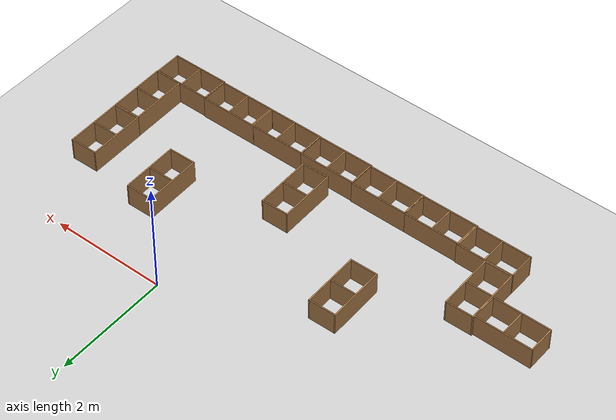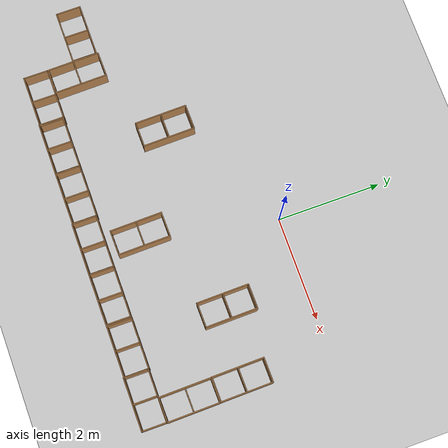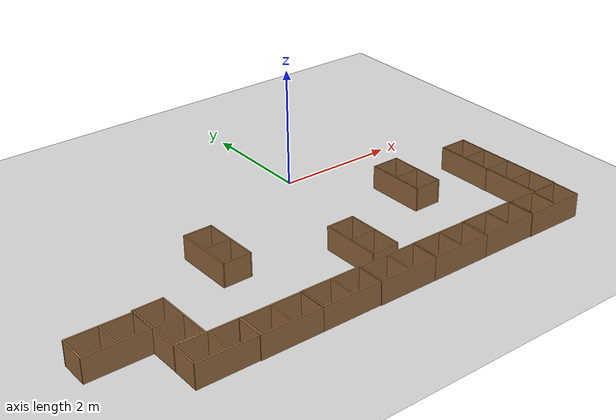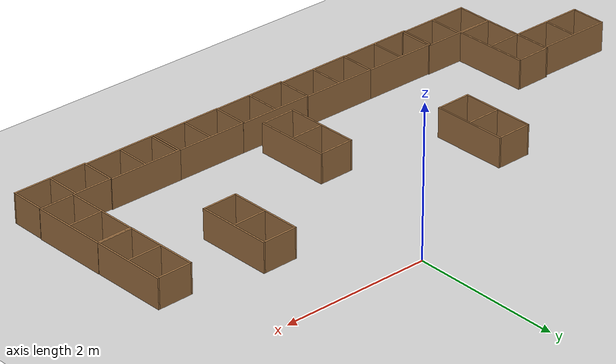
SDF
<sdf version="1.7">
 <world name="default">
  <model name="ground_plane">
   <static>1</static>
   <link name="link">
    <collision name="collision">
     <geometry><plane><normal>0 0 1</normal><size>100 100</size></plane></geometry>
     <surface>
      <contact><collide_bitmask>65535</collide_bitmask></contact>
      <friction><ode><mu>100</mu><mu2>50</mu2></ode></friction>
     </surface>
    </collision>
    <visual name="visual">
     <cast_shadows>0</cast_shadows>
     <geometry><plane><normal>0 0 1</normal><size>100 100</size></plane></geometry>
     <material>
      <script><uri>file://media/materials/scripts/gazebo.material</uri><name>Gazebo/Grey</name></script>
     </material>
    </visual>
   </link>
  </model>
  <model name="cabinet">
   <static>1</static>
   <link name="cabinet_bottom_plate">
    <inertial>
     <pose>0 0 -1 0 -0 0</pose>
     <inertia><ixx>2.05</ixx><ixy>0</ixy><ixz>0</ixz><iyy>2.05</iyy><iyz>0</iyz><izz>2.05</izz></inertia>
     <mass>25</mass>
    </inertial>
    <collision name="cabinet_bottom_plate_geom">
     <pose>0 0 0.01 0 -0 0</pose>
     <geometry><box><size>0.45 0.45 0.02</size></box></geometry>
    </collision>
    <visual name="cabinet_bottom_plate_geom_visual">
     <pose>0 0 0.01 0 -0 0</pose>
     <geometry><box><size>0.45 0.45 0.02</size></box></geometry>
     <material>
      <script><uri>file://media/materials/scripts/gazebo.material</uri><name>Gazebo/Wood</name></script>
     </material>
    </visual>
    <collision name="cabinet_bottom_plate_geom_cabinet_back_plate">
     <pose>0.235 0 0.51 0 -0 0</pose>
     <geometry><box><size>0.02 0.45 1.02</size></box></geometry>
    </collision>
    <visual name="cabinet_bottom_plate_geom_cabinet_back_plate_visual">
     <pose>0.235 0 0.51 0 -0 0</pose>
     <geometry><box><size>0.02 0.45 1.02</size></box></geometry>
     <material>
      <script><uri>file://media/materials/scripts/gazebo.material</uri><name>Gazebo/Wood</name></script>
     </material>
    </visual>
    <collision name="cabinet_bottom_plate_geom_cabinet_left_plate">
     <pose>0 0.235 0.51 0 -0 0</pose>
     <geometry><box><size>0.45 0.02 1.02</size></box></geometry>
    </collision>
    <visual name="cabinet_bottom_plate_geom_cabinet_left_plate_visual">
     <pose>0 0.235 0.51 0 -0 0</pose>
     <geometry><box><size>0.45 0.02 1.02</size></box></geometry>
     <material>
      <script><uri>file://media/materials/scripts/gazebo.material</uri><name>Gazebo/Wood</name></script>
     </material>
    </visual>
    <collision name="cabinet_bottom_plate_geom_cabinet_middle_plate">
     <pose>0 0 0.51 0 -0 0</pose>
     <geometry><box><size>0.45 0.45 0.02</size></box></geometry>
    </collision>
    <visual name="cabinet_bottom_plate_geom_cabinet_middle_plate_visual">
     <pose>0 0 0.51 0 -0 0</pose>
     <geometry><box><size>0.45 0.45 0.02</size></box></geometry>
     <material>
      <script><uri>file://media/materials/scripts/gazebo.material</uri><name>Gazebo/Wood</name></script>
     </material>
    </visual>
    <collision name="cabinet_bottom_plate_geom_cabinet_right_plate">
     <pose>0 -0.235 0.51 0 -0 0</pose>
     <geometry><box><size>0.45 0.02 1.02</size></box></geometry>
    </collision>
    <visual name="cabinet_bottom_plate_geom_cabinet_right_plate_visual">
     <pose>0 -0.235 0.51 0 -0 0</pose>
     <geometry><box><size>0.45 0.02 1.02</size></box></geometry>
     <material>
      <script><uri>file://media/materials/scripts/gazebo.material</uri><name>Gazebo/Wood</name></script>
     </material>
    </visual>
    <collision name="cabinet_bottom_plate_geom_cabinet_top_plate">
     <pose>0 0 1.01 0 -0 0</pose>
     <geometry><box><size>0.45 0.45 0.02</size></box></geometry>
    </collision>
    <visual name="cabinet_bottom_plate_geom_cabinet_top_plate_visual">
     <pose>0 0 1.01 0 -0 0</pose>
     <geometry><box><size>0.45 0.45 0.02</size></box></geometry>
     <material>
      <script><uri>file://media/materials/scripts/gazebo.material</uri><name>Gazebo/Wood</name></script>
     </material>
    </visual>
   </link>
   <pose>-0.147311 -3.44738 0.169718 3.14159 1.5658 3.14159</pose>
  </model>
  <model name="cabinet_clone">
   <static>1</static>
   <link name="cabinet_bottom_plate">
    <inertial>
     <pose>0 0 -1 0 -0 0</pose>
     <inertia><ixx>2.05</ixx><ixy>0</ixy><ixz>0</ixz><iyy>2.05</iyy><iyz>0</iyz><izz>2.05</izz></inertia>
     <mass>25</mass>
    </inertial>
    <collision name="cabinet_bottom_plate_geom">
     <pose>0 0 0.01 0 -0 0</pose>
     <geometry><box><size>0.45 0.45 0.02</size></box></geometry>
    </collision>
    <visual name="cabinet_bottom_plate_geom_visual">
     <pose>0 0 0.01 0 -0 0</pose>
     <geometry><box><size>0.45 0.45 0.02</size></box></geometry>
     <material>
      <script><uri>file://media/materials/scripts/gazebo.material</uri><name>Gazebo/Wood</name></script>
     </material>
    </visual>
    <collision name="cabinet_bottom_plate_geom_cabinet_back_plate">
     <pose>0.235 0 0.51 0 -0 0</pose>
     <geometry><box><size>0.02 0.45 1.02</size></box></geometry>
    </collision>
    <visual name="cabinet_bottom_plate_geom_cabinet_back_plate_visual">
     <pose>0.235 0 0.51 0 -0 0</pose>
     <geometry><box><size>0.02 0.45 1.02</size></box></geometry>
     <material>
      <script><uri>file://media/materials/scripts/gazebo.material</uri><name>Gazebo/Wood</name></script>
     </material>
    </visual>
    <collision name="cabinet_bottom_plate_geom_cabinet_left_plate">
     <pose>0 0.235 0.51 0 -0 0</pose>
     <geometry><box><size>0.45 0.02 1.02</size></box></geometry>
    </collision>
    <visual name="cabinet_bottom_plate_geom_cabinet_left_plate_visual">
     <pose>0 0.235 0.51 0 -0 0</pose>
     <geometry><box><size>0.45 0.02 1.02</size></box></geometry>
     <material>
      <script><uri>file://media/materials/scripts/gazebo.material</uri><name>Gazebo/Wood</name></script>
     </material>
    </visual>
    <collision name="cabinet_bottom_plate_geom_cabinet_middle_plate">
     <pose>0 0 0.51 0 -0 0</pose>
     <geometry><box><size>0.45 0.45 0.02</size></box></geometry>
    </collision>
    <visual name="cabinet_bottom_plate_geom_cabinet_middle_plate_visual">
     <pose>0 0 0.51 0 -0 0</pose>
     <geometry><box><size>0.45 0.45 0.02</size></box></geometry>
     <material>
      <script><uri>file://media/materials/scripts/gazebo.material</uri><name>Gazebo/Wood</name></script>
     </material>
    </visual>
    <collision name="cabinet_bottom_plate_geom_cabinet_right_plate">
     <pose>0 -0.235 0.51 0 -0 0</pose>
     <geometry><box><size>0.45 0.02 1.02</size></box></geometry>
    </collision>
    <visual name="cabinet_bottom_plate_geom_cabinet_right_plate_visual">
     <pose>0 -0.235 0.51 0 -0 0</pose>
     <geometry><box><size>0.45 0.02 1.02</size></box></geometry>
     <material>
      <script><uri>file://media/materials/scripts/gazebo.material</uri><name>Gazebo/Wood</name></script>
     </material>
    </visual>
    <collision name="cabinet_bottom_plate_geom_cabinet_top_plate">
     <pose>0 0 1.01 0 -0 0</pose>
     <geometry><box><size>0.45 0.45 0.02</size></box></geometry>
    </collision>
    <visual name="cabinet_bottom_plate_geom_cabinet_top_plate_visual">
     <pose>0 0 1.01 0 -0 0</pose>
     <geometry><box><size>0.45 0.45 0.02</size></box></geometry>
     <material>
      <script><uri>file://media/materials/scripts/gazebo.material</uri><name>Gazebo/Wood</name></script>
     </material>
    </visual>
   </link>
   <pose>-1.15505 -3.44663 0.169718 3.14159 1.5658 3.14159</pose>
  </model>
  <model name="cabinet_clone_0">
   <static>1</static>
   <link name="cabinet_bottom_plate">
    <inertial>
     <pose>0 0 -1 0 -0 0</pose>
     <inertia><ixx>2.05</ixx><ixy>0</ixy><ixz>0</ixz><iyy>2.05</iyy><iyz>0</iyz><izz>2.05</izz></inertia>
     <mass>25</mass>
    </inertial>
    <collision name="cabinet_bottom_plate_geom">
     <pose>0 0 0.01 0 -0 0</pose>
     <geometry><box><size>0.45 0.45 0.02</size></box></geometry>
    </collision>
    <visual name="cabinet_bottom_plate_geom_visual">
     <pose>0 0 0.01 0 -0 0</pose>
     <geometry><box><size>0.45 0.45 0.02</size></box></geometry>
     <material>
      <script><uri>file://media/materials/scripts/gazebo.material</uri><name>Gazebo/Wood</name></script>
     </material>
    </visual>
    <collision name="cabinet_bottom_plate_geom_cabinet_back_plate">
     <pose>0.235 0 0.51 0 -0 0</pose>
     <geometry><box><size>0.02 0.45 1.02</size></box></geometry>
    </collision>
    <visual name="cabinet_bottom_plate_geom_cabinet_back_plate_visual">
     <pose>0.235 0 0.51 0 -0 0</pose>
     <geometry><box><size>0.02 0.45 1.02</size></box></geometry>
     <material>
      <script><uri>file://media/materials/scripts/gazebo.material</uri><name>Gazebo/Wood</name></script>
     </material>
    </visual>
    <collision name="cabinet_bottom_plate_geom_cabinet_left_plate">
     <pose>0 0.235 0.51 0 -0 0</pose>
     <geometry><box><size>0.45 0.02 1.02</size></box></geometry>
    </collision>
    <visual name="cabinet_bottom_plate_geom_cabinet_left_plate_visual">
     <pose>0 0.235 0.51 0 -0 0</pose>
     <geometry><box><size>0.45 0.02 1.02</size></box></geometry>
     <material>
      <script><uri>file://media/materials/scripts/gazebo.material</uri><name>Gazebo/Wood</name></script>
     </material>
    </visual>
    <collision name="cabinet_bottom_plate_geom_cabinet_middle_plate">
     <pose>0 0 0.51 0 -0 0</pose>
     <geometry><box><size>0.45 0.45 0.02</size></box></geometry>
    </collision>
    <visual name="cabinet_bottom_plate_geom_cabinet_middle_plate_visual">
     <pose>0 0 0.51 0 -0 0</pose>
     <geometry><box><size>0.45 0.45 0.02</size></box></geometry>
     <material>
      <script><uri>file://media/materials/scripts/gazebo.material</uri><name>Gazebo/Wood</name></script>
     </material>
    </visual>
    <collision name="cabinet_bottom_plate_geom_cabinet_right_plate">
     <pose>0 -0.235 0.51 0 -0 0</pose>
     <geometry><box><size>0.45 0.02 1.02</size></box></geometry>
    </collision>
    <visual name="cabinet_bottom_plate_geom_cabinet_right_plate_visual">
     <pose>0 -0.235 0.51 0 -0 0</pose>
     <geometry><box><size>0.45 0.02 1.02</size></box></geometry>
     <material>
      <script><uri>file://media/materials/scripts/gazebo.material</uri><name>Gazebo/Wood</name></script>
     </material>
    </visual>
    <collision name="cabinet_bottom_plate_geom_cabinet_top_plate">
     <pose>0 0 1.01 0 -0 0</pose>
     <geometry><box><size>0.45 0.45 0.02</size></box></geometry>
    </collision>
    <visual name="cabinet_bottom_plate_geom_cabinet_top_plate_visual">
     <pose>0 0 1.01 0 -0 0</pose>
     <geometry><box><size>0.45 0.45 0.02</size></box></geometry>
     <material>
      <script><uri>file://media/materials/scripts/gazebo.material</uri><name>Gazebo/Wood</name></script>
     </material>
    </visual>
   </link>
   <pose>-2.16153 -3.43466 0.169718 3.14159 1.5658 3.14159</pose>
  </model>
  <model name="cabinet_clone_1">
   <static>1</static>
   <link name="cabinet_bottom_plate">
    <inertial>
     <pose>0 0 -1 0 -0 0</pose>
     <inertia><ixx>2.05</ixx><ixy>0</ixy><ixz>0</ixz><iyy>2.05</iyy><iyz>0</iyz><izz>2.05</izz></inertia>
     <mass>25</mass>
    </inertial>
    <collision name="cabinet_bottom_plate_geom">
     <pose>0 0 0.01 0 -0 0</pose>
     <geometry><box><size>0.45 0.45 0.02</size></box></geometry>
    </collision>
    <visual name="cabinet_bottom_plate_geom_visual">
     <pose>0 0 0.01 0 -0 0</pose>
     <geometry><box><size>0.45 0.45 0.02</size></box></geometry>
     <material>
      <script><uri>file://media/materials/scripts/gazebo.material</uri><name>Gazebo/Wood</name></script>
     </material>
    </visual>
    <collision name="cabinet_bottom_plate_geom_cabinet_back_plate">
     <pose>0.235 0 0.51 0 -0 0</pose>
     <geometry><box><size>0.02 0.45 1.02</size></box></geometry>
    </collision>
    <visual name="cabinet_bottom_plate_geom_cabinet_back_plate_visual">
     <pose>0.235 0 0.51 0 -0 0</pose>
     <geometry><box><size>0.02 0.45 1.02</size></box></geometry>
     <material>
      <script><uri>file://media/materials/scripts/gazebo.material</uri><name>Gazebo/Wood</name></script>
     </material>
    </visual>
    <collision name="cabinet_bottom_plate_geom_cabinet_left_plate">
     <pose>0 0.235 0.51 0 -0 0</pose>
     <geometry><box><size>0.45 0.02 1.02</size></box></geometry>
    </collision>
    <visual name="cabinet_bottom_plate_geom_cabinet_left_plate_visual">
     <pose>0 0.235 0.51 0 -0 0</pose>
     <geometry><box><size>0.45 0.02 1.02</size></box></geometry>
     <material>
      <script><uri>file://media/materials/scripts/gazebo.material</uri><name>Gazebo/Wood</name></script>
     </material>
    </visual>
    <collision name="cabinet_bottom_plate_geom_cabinet_middle_plate">
     <pose>0 0 0.51 0 -0 0</pose>
     <geometry><box><size>0.45 0.45 0.02</size></box></geometry>
    </collision>
    <visual name="cabinet_bottom_plate_geom_cabinet_middle_plate_visual">
     <pose>0 0 0.51 0 -0 0</pose>
     <geometry><box><size>0.45 0.45 0.02</size></box></geometry>
     <material>
      <script><uri>file://media/materials/scripts/gazebo.material</uri><name>Gazebo/Wood</name></script>
     </material>
    </visual>
    <collision name="cabinet_bottom_plate_geom_cabinet_right_plate">
     <pose>0 -0.235 0.51 0 -0 0</pose>
     <geometry><box><size>0.45 0.02 1.02</size></box></geometry>
    </collision>
    <visual name="cabinet_bottom_plate_geom_cabinet_right_plate_visual">
     <pose>0 -0.235 0.51 0 -0 0</pose>
     <geometry><box><size>0.45 0.02 1.02</size></box></geometry>
     <material>
      <script><uri>file://media/materials/scripts/gazebo.material</uri><name>Gazebo/Wood</name></script>
     </material>
    </visual>
    <collision name="cabinet_bottom_plate_geom_cabinet_top_plate">
     <pose>0 0 1.01 0 -0 0</pose>
     <geometry><box><size>0.45 0.45 0.02</size></box></geometry>
    </collision>
    <visual name="cabinet_bottom_plate_geom_cabinet_top_plate_visual">
     <pose>0 0 1.01 0 -0 0</pose>
     <geometry><box><size>0.45 0.45 0.02</size></box></geometry>
     <material>
      <script><uri>file://media/materials/scripts/gazebo.material</uri><name>Gazebo/Wood</name></script>
     </material>
    </visual>
   </link>
   <pose>-3.17096 -3.43522 0.169718 3.14159 1.5658 3.14159</pose>
  </model>
  <model name="cabinet_clone_2">
   <static>1</static>
   <link name="cabinet_bottom_plate">
    <inertial>
     <pose>0 0 -1 0 -0 0</pose>
     <inertia><ixx>2.05</ixx><ixy>0</ixy><ixz>0</ixz><iyy>2.05</iyy><iyz>0</iyz><izz>2.05</izz></inertia>
     <mass>25</mass>
    </inertial>
    <collision name="cabinet_bottom_plate_geom">
     <pose>0 0 0.01 0 -0 0</pose>
     <geometry><box><size>0.45 0.45 0.02</size></box></geometry>
    </collision>
    <visual name="cabinet_bottom_plate_geom_visual">
     <pose>0 0 0.01 0 -0 0</pose>
     <geometry><box><size>0.45 0.45 0.02</size></box></geometry>
     <material>
      <script><uri>file://media/materials/scripts/gazebo.material</uri><name>Gazebo/Wood</name></script>
     </material>
    </visual>
    <collision name="cabinet_bottom_plate_geom_cabinet_back_plate">
     <pose>0.235 0 0.51 0 -0 0</pose>
     <geometry><box><size>0.02 0.45 1.02</size></box></geometry>
    </collision>
    <visual name="cabinet_bottom_plate_geom_cabinet_back_plate_visual">
     <pose>0.235 0 0.51 0 -0 0</pose>
     <geometry><box><size>0.02 0.45 1.02</size></box></geometry>
     <material>
      <script><uri>file://media/materials/scripts/gazebo.material</uri><name>Gazebo/Wood</name></script>
     </material>
    </visual>
    <collision name="cabinet_bottom_plate_geom_cabinet_left_plate">
     <pose>0 0.235 0.51 0 -0 0</pose>
     <geometry><box><size>0.45 0.02 1.02</size></box></geometry>
    </collision>
    <visual name="cabinet_bottom_plate_geom_cabinet_left_plate_visual">
     <pose>0 0.235 0.51 0 -0 0</pose>
     <geometry><box><size>0.45 0.02 1.02</size></box></geometry>
     <material>
      <script><uri>file://media/materials/scripts/gazebo.material</uri><name>Gazebo/Wood</name></script>
     </material>
    </visual>
    <collision name="cabinet_bottom_plate_geom_cabinet_middle_plate">
     <pose>0 0 0.51 0 -0 0</pose>
     <geometry><box><size>0.45 0.45 0.02</size></box></geometry>
    </collision>
    <visual name="cabinet_bottom_plate_geom_cabinet_middle_plate_visual">
     <pose>0 0 0.51 0 -0 0</pose>
     <geometry><box><size>0.45 0.45 0.02</size></box></geometry>
     <material>
      <script><uri>file://media/materials/scripts/gazebo.material</uri><name>Gazebo/Wood</name></script>
     </material>
    </visual>
    <collision name="cabinet_bottom_plate_geom_cabinet_right_plate">
     <pose>0 -0.235 0.51 0 -0 0</pose>
     <geometry><box><size>0.45 0.02 1.02</size></box></geometry>
    </collision>
    <visual name="cabinet_bottom_plate_geom_cabinet_right_plate_visual">
     <pose>0 -0.235 0.51 0 -0 0</pose>
     <geometry><box><size>0.45 0.02 1.02</size></box></geometry>
     <material>
      <script><uri>file://media/materials/scripts/gazebo.material</uri><name>Gazebo/Wood</name></script>
     </material>
    </visual>
    <collision name="cabinet_bottom_plate_geom_cabinet_top_plate">
     <pose>0 0 1.01 0 -0 0</pose>
     <geometry><box><size>0.45 0.45 0.02</size></box></geometry>
    </collision>
    <visual name="cabinet_bottom_plate_geom_cabinet_top_plate_visual">
     <pose>0 0 1.01 0 -0 0</pose>
     <geometry><box><size>0.45 0.45 0.02</size></box></geometry>
     <material>
      <script><uri>file://media/materials/scripts/gazebo.material</uri><name>Gazebo/Wood</name></script>
     </material>
    </visual>
   </link>
   <pose>-4.14701 -3.42325 0.169718 3.14159 1.5658 3.14159</pose>
  </model>
  <model name="cabinet_clone_3">
   <static>1</static>
   <link name="cabinet_bottom_plate">
    <inertial>
     <pose>0 0 -1 0 -0 0</pose>
     <inertia><ixx>2.05</ixx><ixy>0</ixy><ixz>0</ixz><iyy>2.05</iyy><iyz>0</iyz><izz>2.05</izz></inertia>
     <mass>25</mass>
    </inertial>
    <collision name="cabinet_bottom_plate_geom">
     <pose>0 0 0.01 0 -0 0</pose>
     <geometry><box><size>0.45 0.45 0.02</size></box></geometry>
    </collision>
    <visual name="cabinet_bottom_plate_geom_visual">
     <pose>0 0 0.01 0 -0 0</pose>
     <geometry><box><size>0.45 0.45 0.02</size></box></geometry>
     <material>
      <script><uri>file://media/materials/scripts/gazebo.material</uri><name>Gazebo/Wood</name></script>
     </material>
    </visual>
    <collision name="cabinet_bottom_plate_geom_cabinet_back_plate">
     <pose>0.235 0 0.51 0 -0 0</pose>
     <geometry><box><size>0.02 0.45 1.02</size></box></geometry>
    </collision>
    <visual name="cabinet_bottom_plate_geom_cabinet_back_plate_visual">
     <pose>0.235 0 0.51 0 -0 0</pose>
     <geometry><box><size>0.02 0.45 1.02</size></box></geometry>
     <material>
      <script><uri>file://media/materials/scripts/gazebo.material</uri><name>Gazebo/Wood</name></script>
     </material>
    </visual>
    <collision name="cabinet_bottom_plate_geom_cabinet_left_plate">
     <pose>0 0.235 0.51 0 -0 0</pose>
     <geometry><box><size>0.45 0.02 1.02</size></box></geometry>
    </collision>
    <visual name="cabinet_bottom_plate_geom_cabinet_left_plate_visual">
     <pose>0 0.235 0.51 0 -0 0</pose>
     <geometry><box><size>0.45 0.02 1.02</size></box></geometry>
     <material>
      <script><uri>file://media/materials/scripts/gazebo.material</uri><name>Gazebo/Wood</name></script>
     </material>
    </visual>
    <collision name="cabinet_bottom_plate_geom_cabinet_middle_plate">
     <pose>0 0 0.51 0 -0 0</pose>
     <geometry><box><size>0.45 0.45 0.02</size></box></geometry>
    </collision>
    <visual name="cabinet_bottom_plate_geom_cabinet_middle_plate_visual">
     <pose>0 0 0.51 0 -0 0</pose>
     <geometry><box><size>0.45 0.45 0.02</size></box></geometry>
     <material>
      <script><uri>file://media/materials/scripts/gazebo.material</uri><name>Gazebo/Wood</name></script>
     </material>
    </visual>
    <collision name="cabinet_bottom_plate_geom_cabinet_right_plate">
     <pose>0 -0.235 0.51 0 -0 0</pose>
     <geometry><box><size>0.45 0.02 1.02</size></box></geometry>
    </collision>
    <visual name="cabinet_bottom_plate_geom_cabinet_right_plate_visual">
     <pose>0 -0.235 0.51 0 -0 0</pose>
     <geometry><box><size>0.45 0.02 1.02</size></box></geometry>
     <material>
      <script><uri>file://media/materials/scripts/gazebo.material</uri><name>Gazebo/Wood</name></script>
     </material>
    </visual>
    <collision name="cabinet_bottom_plate_geom_cabinet_top_plate">
     <pose>0 0 1.01 0 -0 0</pose>
     <geometry><box><size>0.45 0.45 0.02</size></box></geometry>
    </collision>
    <visual name="cabinet_bottom_plate_geom_cabinet_top_plate_visual">
     <pose>0 0 1.01 0 -0 0</pose>
     <geometry><box><size>0.45 0.45 0.02</size></box></geometry>
     <material>
      <script><uri>file://media/materials/scripts/gazebo.material</uri><name>Gazebo/Wood</name></script>
     </material>
    </visual>
   </link>
   <pose>0.824331 -3.4453 0.169718 3.14159 1.5658 3.14159</pose>
  </model>
  <model name="cabinet_clone_4">
   <static>1</static>
   <link name="cabinet_bottom_plate">
    <inertial>
     <pose>0 0 -1 0 -0 0</pose>
     <inertia><ixx>2.05</ixx><ixy>0</ixy><ixz>0</ixz><iyy>2.05</iyy><iyz>0</iyz><izz>2.05</izz></inertia>
     <mass>25</mass>
    </inertial>
    <collision name="cabinet_bottom_plate_geom">
     <pose>0 0 0.01 0 -0 0</pose>
     <geometry><box><size>0.45 0.45 0.02</size></box></geometry>
    </collision>
    <visual name="cabinet_bottom_plate_geom_visual">
     <pose>0 0 0.01 0 -0 0</pose>
     <geometry><box><size>0.45 0.45 0.02</size></box></geometry>
     <material>
      <script><uri>file://media/materials/scripts/gazebo.material</uri><name>Gazebo/Wood</name></script>
     </material>
    </visual>
    <collision name="cabinet_bottom_plate_geom_cabinet_back_plate">
     <pose>0.235 0 0.51 0 -0 0</pose>
     <geometry><box><size>0.02 0.45 1.02</size></box></geometry>
    </collision>
    <visual name="cabinet_bottom_plate_geom_cabinet_back_plate_visual">
     <pose>0.235 0 0.51 0 -0 0</pose>
     <geometry><box><size>0.02 0.45 1.02</size></box></geometry>
     <material>
      <script><uri>file://media/materials/scripts/gazebo.material</uri><name>Gazebo/Wood</name></script>
     </material>
    </visual>
    <collision name="cabinet_bottom_plate_geom_cabinet_left_plate">
     <pose>0 0.235 0.51 0 -0 0</pose>
     <geometry><box><size>0.45 0.02 1.02</size></box></geometry>
    </collision>
    <visual name="cabinet_bottom_plate_geom_cabinet_left_plate_visual">
     <pose>0 0.235 0.51 0 -0 0</pose>
     <geometry><box><size>0.45 0.02 1.02</size></box></geometry>
     <material>
      <script><uri>file://media/materials/scripts/gazebo.material</uri><name>Gazebo/Wood</name></script>
     </material>
    </visual>
    <collision name="cabinet_bottom_plate_geom_cabinet_middle_plate">
     <pose>0 0 0.51 0 -0 0</pose>
     <geometry><box><size>0.45 0.45 0.02</size></box></geometry>
    </collision>
    <visual name="cabinet_bottom_plate_geom_cabinet_middle_plate_visual">
     <pose>0 0 0.51 0 -0 0</pose>
     <geometry><box><size>0.45 0.45 0.02</size></box></geometry>
     <material>
      <script><uri>file://media/materials/scripts/gazebo.material</uri><name>Gazebo/Wood</name></script>
     </material>
    </visual>
    <collision name="cabinet_bottom_plate_geom_cabinet_right_plate">
     <pose>0 -0.235 0.51 0 -0 0</pose>
     <geometry><box><size>0.45 0.02 1.02</size></box></geometry>
    </collision>
    <visual name="cabinet_bottom_plate_geom_cabinet_right_plate_visual">
     <pose>0 -0.235 0.51 0 -0 0</pose>
     <geometry><box><size>0.45 0.02 1.02</size></box></geometry>
     <material>
      <script><uri>file://media/materials/scripts/gazebo.material</uri><name>Gazebo/Wood</name></script>
     </material>
    </visual>
    <collision name="cabinet_bottom_plate_geom_cabinet_top_plate">
     <pose>0 0 1.01 0 -0 0</pose>
     <geometry><box><size>0.45 0.45 0.02</size></box></geometry>
    </collision>
    <visual name="cabinet_bottom_plate_geom_cabinet_top_plate_visual">
     <pose>0 0 1.01 0 -0 0</pose>
     <geometry><box><size>0.45 0.45 0.02</size></box></geometry>
     <material>
      <script><uri>file://media/materials/scripts/gazebo.material</uri><name>Gazebo/Wood</name></script>
     </material>
    </visual>
   </link>
   <pose>1.83361 -3.45652 0.169718 3.14159 1.5658 3.14159</pose>
  </model>
  <model name="cabinet_clone_6">
   <static>1</static>
   <link name="cabinet_bottom_plate">
    <inertial>
     <pose>0 0 -1 0 -0 0</pose>
     <inertia><ixx>2.05</ixx><ixy>0</ixy><ixz>0</ixz><iyy>2.05</iyy><iyz>0</iyz><izz>2.05</izz></inertia>
     <mass>25</mass>
    </inertial>
    <collision name="cabinet_bottom_plate_geom">
     <pose>0 0 0.01 0 -0 0</pose>
     <geometry><box><size>0.45 0.45 0.02</size></box></geometry>
    </collision>
    <visual name="cabinet_bottom_plate_geom_visual">
     <pose>0 0 0.01 0 -0 0</pose>
     <geometry><box><size>0.45 0.45 0.02</size></box></geometry>
     <material>
      <script><uri>file://media/materials/scripts/gazebo.material</uri><name>Gazebo/Wood</name></script>
     </material>
    </visual>
    <collision name="cabinet_bottom_plate_geom_cabinet_back_plate">
     <pose>0.235 0 0.51 0 -0 0</pose>
     <geometry><box><size>0.02 0.45 1.02</size></box></geometry>
    </collision>
    <visual name="cabinet_bottom_plate_geom_cabinet_back_plate_visual">
     <pose>0.235 0 0.51 0 -0 0</pose>
     <geometry><box><size>0.02 0.45 1.02</size></box></geometry>
     <material>
      <script><uri>file://media/materials/scripts/gazebo.material</uri><name>Gazebo/Wood</name></script>
     </material>
    </visual>
    <collision name="cabinet_bottom_plate_geom_cabinet_left_plate">
     <pose>0 0.235 0.51 0 -0 0</pose>
     <geometry><box><size>0.45 0.02 1.02</size></box></geometry>
    </collision>
    <visual name="cabinet_bottom_plate_geom_cabinet_left_plate_visual">
     <pose>0 0.235 0.51 0 -0 0</pose>
     <geometry><box><size>0.45 0.02 1.02</size></box></geometry>
     <material>
      <script><uri>file://media/materials/scripts/gazebo.material</uri><name>Gazebo/Wood</name></script>
     </material>
    </visual>
    <collision name="cabinet_bottom_plate_geom_cabinet_middle_plate">
     <pose>0 0 0.51 0 -0 0</pose>
     <geometry><box><size>0.45 0.45 0.02</size></box></geometry>
    </collision>
    <visual name="cabinet_bottom_plate_geom_cabinet_middle_plate_visual">
     <pose>0 0 0.51 0 -0 0</pose>
     <geometry><box><size>0.45 0.45 0.02</size></box></geometry>
     <material>
      <script><uri>file://media/materials/scripts/gazebo.material</uri><name>Gazebo/Wood</name></script>
     </material>
    </visual>
    <collision name="cabinet_bottom_plate_geom_cabinet_right_plate">
     <pose>0 -0.235 0.51 0 -0 0</pose>
     <geometry><box><size>0.45 0.02 1.02</size></box></geometry>
    </collision>
    <visual name="cabinet_bottom_plate_geom_cabinet_right_plate_visual">
     <pose>0 -0.235 0.51 0 -0 0</pose>
     <geometry><box><size>0.45 0.02 1.02</size></box></geometry>
     <material>
      <script><uri>file://media/materials/scripts/gazebo.material</uri><name>Gazebo/Wood</name></script>
     </material>
    </visual>
    <collision name="cabinet_bottom_plate_geom_cabinet_top_plate">
     <pose>0 0 1.01 0 -0 0</pose>
     <geometry><box><size>0.45 0.45 0.02</size></box></geometry>
    </collision>
    <visual name="cabinet_bottom_plate_geom_cabinet_top_plate_visual">
     <pose>0 0 1.01 0 -0 0</pose>
     <geometry><box><size>0.45 0.45 0.02</size></box></geometry>
     <material>
      <script><uri>file://media/materials/scripts/gazebo.material</uri><name>Gazebo/Wood</name></script>
     </material>
    </visual>
   </link>
   <pose>-5.17054 -2.43861 0.169718 3.14159 1.5658 3.14159</pose>
  </model>
  <model name="cabinet_clone_5_clone_5">
   <static>1</static>
   <link name="cabinet_bottom_plate">
    <inertial>
     <pose>0 0 -1 0 -0 0</pose>
     <inertia><ixx>2.05</ixx><ixy>0</ixy><ixz>0</ixz><iyy>2.05</iyy><iyz>0</iyz><izz>2.05</izz></inertia>
     <mass>25</mass>
    </inertial>
    <collision name="cabinet_bottom_plate_geom">
     <pose>0 0 0.01 0 -0 0</pose>
     <geometry><box><size>0.45 0.45 0.02</size></box></geometry>
    </collision>
    <visual name="cabinet_bottom_plate_geom_visual">
     <pose>0 0 0.01 0 -0 0</pose>
     <geometry><box><size>0.45 0.45 0.02</size></box></geometry>
     <material>
      <script><uri>file://media/materials/scripts/gazebo.material</uri><name>Gazebo/Wood</name></script>
     </material>
    </visual>
    <collision name="cabinet_bottom_plate_geom_cabinet_back_plate">
     <pose>0.235 0 0.51 0 -0 0</pose>
     <geometry><box><size>0.02 0.45 1.02</size></box></geometry>
    </collision>
    <visual name="cabinet_bottom_plate_geom_cabinet_back_plate_visual">
     <pose>0.235 0 0.51 0 -0 0</pose>
     <geometry><box><size>0.02 0.45 1.02</size></box></geometry>
     <material>
      <script><uri>file://media/materials/scripts/gazebo.material</uri><name>Gazebo/Wood</name></script>
     </material>
    </visual>
    <collision name="cabinet_bottom_plate_geom_cabinet_left_plate">
     <pose>0 0.235 0.51 0 -0 0</pose>
     <geometry><box><size>0.45 0.02 1.02</size></box></geometry>
    </collision>
    <visual name="cabinet_bottom_plate_geom_cabinet_left_plate_visual">
     <pose>0 0.235 0.51 0 -0 0</pose>
     <geometry><box><size>0.45 0.02 1.02</size></box></geometry>
     <material>
      <script><uri>file://media/materials/scripts/gazebo.material</uri><name>Gazebo/Wood</name></script>
     </material>
    </visual>
    <collision name="cabinet_bottom_plate_geom_cabinet_middle_plate">
     <pose>0 0 0.51 0 -0 0</pose>
     <geometry><box><size>0.45 0.45 0.02</size></box></geometry>
    </collision>
    <visual name="cabinet_bottom_plate_geom_cabinet_middle_plate_visual">
     <pose>0 0 0.51 0 -0 0</pose>
     <geometry><box><size>0.45 0.45 0.02</size></box></geometry>
     <material>
      <script><uri>file://media/materials/scripts/gazebo.material</uri><name>Gazebo/Wood</name></script>
     </material>
    </visual>
    <collision name="cabinet_bottom_plate_geom_cabinet_right_plate">
     <pose>0 -0.235 0.51 0 -0 0</pose>
     <geometry><box><size>0.45 0.02 1.02</size></box></geometry>
    </collision>
    <visual name="cabinet_bottom_plate_geom_cabinet_right_plate_visual">
     <pose>0 -0.235 0.51 0 -0 0</pose>
     <geometry><box><size>0.45 0.02 1.02</size></box></geometry>
     <material>
      <script><uri>file://media/materials/scripts/gazebo.material</uri><name>Gazebo/Wood</name></script>
     </material>
    </visual>
    <collision name="cabinet_bottom_plate_geom_cabinet_top_plate">
     <pose>0 0 1.01 0 -0 0</pose>
     <geometry><box><size>0.45 0.45 0.02</size></box></geometry>
    </collision>
    <visual name="cabinet_bottom_plate_geom_cabinet_top_plate_visual">
     <pose>0 0 1.01 0 -0 0</pose>
     <geometry><box><size>0.45 0.45 0.02</size></box></geometry>
     <material>
      <script><uri>file://media/materials/scripts/gazebo.material</uri><name>Gazebo/Wood</name></script>
     </material>
    </visual>
   </link>
   <pose>2.61559 -3.21985 0.169718 1.55548 1.5658 -3.14159</pose>
  </model>
  <model name="cabinet_clone_5_clone_6">
   <static>1</static>
   <link name="cabinet_bottom_plate">
    <inertial>
     <pose>0 0 -1 0 -0 0</pose>
     <inertia><ixx>2.05</ixx><ixy>0</ixy><ixz>0</ixz><iyy>2.05</iyy><iyz>0</iyz><izz>2.05</izz></inertia>
     <mass>25</mass>
    </inertial>
    <collision name="cabinet_bottom_plate_geom">
     <pose>0 0 0.01 0 -0 0</pose>
     <geometry><box><size>0.45 0.45 0.02</size></box></geometry>
    </collision>
    <visual name="cabinet_bottom_plate_geom_visual">
     <pose>0 0 0.01 0 -0 0</pose>
     <geometry><box><size>0.45 0.45 0.02</size></box></geometry>
     <material>
      <script><uri>file://media/materials/scripts/gazebo.material</uri><name>Gazebo/Wood</name></script>
     </material>
    </visual>
    <collision name="cabinet_bottom_plate_geom_cabinet_back_plate">
     <pose>0.235 0 0.51 0 -0 0</pose>
     <geometry><box><size>0.02 0.45 1.02</size></box></geometry>
    </collision>
    <visual name="cabinet_bottom_plate_geom_cabinet_back_plate_visual">
     <pose>0.235 0 0.51 0 -0 0</pose>
     <geometry><box><size>0.02 0.45 1.02</size></box></geometry>
     <material>
      <script><uri>file://media/materials/scripts/gazebo.material</uri><name>Gazebo/Wood</name></script>
     </material>
    </visual>
    <collision name="cabinet_bottom_plate_geom_cabinet_left_plate">
     <pose>0 0.235 0.51 0 -0 0</pose>
     <geometry><box><size>0.45 0.02 1.02</size></box></geometry>
    </collision>
    <visual name="cabinet_bottom_plate_geom_cabinet_left_plate_visual">
     <pose>0 0.235 0.51 0 -0 0</pose>
     <geometry><box><size>0.45 0.02 1.02</size></box></geometry>
     <material>
      <script><uri>file://media/materials/scripts/gazebo.material</uri><name>Gazebo/Wood</name></script>
     </material>
    </visual>
    <collision name="cabinet_bottom_plate_geom_cabinet_middle_plate">
     <pose>0 0 0.51 0 -0 0</pose>
     <geometry><box><size>0.45 0.45 0.02</size></box></geometry>
    </collision>
    <visual name="cabinet_bottom_plate_geom_cabinet_middle_plate_visual">
     <pose>0 0 0.51 0 -0 0</pose>
     <geometry><box><size>0.45 0.45 0.02</size></box></geometry>
     <material>
      <script><uri>file://media/materials/scripts/gazebo.material</uri><name>Gazebo/Wood</name></script>
     </material>
    </visual>
    <collision name="cabinet_bottom_plate_geom_cabinet_right_plate">
     <pose>0 -0.235 0.51 0 -0 0</pose>
     <geometry><box><size>0.45 0.02 1.02</size></box></geometry>
    </collision>
    <visual name="cabinet_bottom_plate_geom_cabinet_right_plate_visual">
     <pose>0 -0.235 0.51 0 -0 0</pose>
     <geometry><box><size>0.45 0.02 1.02</size></box></geometry>
     <material>
      <script><uri>file://media/materials/scripts/gazebo.material</uri><name>Gazebo/Wood</name></script>
     </material>
    </visual>
    <collision name="cabinet_bottom_plate_geom_cabinet_top_plate">
     <pose>0 0 1.01 0 -0 0</pose>
     <geometry><box><size>0.45 0.45 0.02</size></box></geometry>
    </collision>
    <visual name="cabinet_bottom_plate_geom_cabinet_top_plate_visual">
     <pose>0 0 1.01 0 -0 0</pose>
     <geometry><box><size>0.45 0.45 0.02</size></box></geometry>
     <material>
      <script><uri>file://media/materials/scripts/gazebo.material</uri><name>Gazebo/Wood</name></script>
     </material>
    </visual>
   </link>
   <pose>2.59674 -2.20168 0.169718 1.55548 1.5658 -3.14159</pose>
  </model>
  <model name="cabinet_clone_5_clone_13">
   <static>1</static>
   <link name="cabinet_bottom_plate">
    <inertial>
     <pose>0 0 -1 0 -0 0</pose>
     <inertia><ixx>2.05</ixx><ixy>0</ixy><ixz>0</ixz><iyy>2.05</iyy><iyz>0</iyz><izz>2.05</izz></inertia>
     <mass>25</mass>
    </inertial>
    <collision name="cabinet_bottom_plate_geom">
     <pose>0 0 0.01 0 -0 0</pose>
     <geometry><box><size>0.45 0.45 0.02</size></box></geometry>
    </collision>
    <visual name="cabinet_bottom_plate_geom_visual">
     <pose>0 0 0.01 0 -0 0</pose>
     <geometry><box><size>0.45 0.45 0.02</size></box></geometry>
     <material>
      <script><uri>file://media/materials/scripts/gazebo.material</uri><name>Gazebo/Wood</name></script>
     </material>
    </visual>
    <collision name="cabinet_bottom_plate_geom_cabinet_back_plate">
     <pose>0.235 0 0.51 0 -0 0</pose>
     <geometry><box><size>0.02 0.45 1.02</size></box></geometry>
    </collision>
    <visual name="cabinet_bottom_plate_geom_cabinet_back_plate_visual">
     <pose>0.235 0 0.51 0 -0 0</pose>
     <geometry><box><size>0.02 0.45 1.02</size></box></geometry>
     <material>
      <script><uri>file://media/materials/scripts/gazebo.material</uri><name>Gazebo/Wood</name></script>
     </material>
    </visual>
    <collision name="cabinet_bottom_plate_geom_cabinet_left_plate">
     <pose>0 0.235 0.51 0 -0 0</pose>
     <geometry><box><size>0.45 0.02 1.02</size></box></geometry>
    </collision>
    <visual name="cabinet_bottom_plate_geom_cabinet_left_plate_visual">
     <pose>0 0.235 0.51 0 -0 0</pose>
     <geometry><box><size>0.45 0.02 1.02</size></box></geometry>
     <material>
      <script><uri>file://media/materials/scripts/gazebo.material</uri><name>Gazebo/Wood</name></script>
     </material>
    </visual>
    <collision name="cabinet_bottom_plate_geom_cabinet_middle_plate">
     <pose>0 0 0.51 0 -0 0</pose>
     <geometry><box><size>0.45 0.45 0.02</size></box></geometry>
    </collision>
    <visual name="cabinet_bottom_plate_geom_cabinet_middle_plate_visual">
     <pose>0 0 0.51 0 -0 0</pose>
     <geometry><box><size>0.45 0.45 0.02</size></box></geometry>
     <material>
      <script><uri>file://media/materials/scripts/gazebo.material</uri><name>Gazebo/Wood</name></script>
     </material>
    </visual>
    <collision name="cabinet_bottom_plate_geom_cabinet_right_plate">
     <pose>0 -0.235 0.51 0 -0 0</pose>
     <geometry><box><size>0.45 0.02 1.02</size></box></geometry>
    </collision>
    <visual name="cabinet_bottom_plate_geom_cabinet_right_plate_visual">
     <pose>0 -0.235 0.51 0 -0 0</pose>
     <geometry><box><size>0.45 0.02 1.02</size></box></geometry>
     <material>
      <script><uri>file://media/materials/scripts/gazebo.material</uri><name>Gazebo/Wood</name></script>
     </material>
    </visual>
    <collision name="cabinet_bottom_plate_geom_cabinet_top_plate">
     <pose>0 0 1.01 0 -0 0</pose>
     <geometry><box><size>0.45 0.45 0.02</size></box></geometry>
    </collision>
    <visual name="cabinet_bottom_plate_geom_cabinet_top_plate_visual">
     <pose>0 0 1.01 0 -0 0</pose>
     <geometry><box><size>0.45 0.45 0.02</size></box></geometry>
     <material>
      <script><uri>file://media/materials/scripts/gazebo.material</uri><name>Gazebo/Wood</name></script>
     </material>
    </visual>
   </link>
   <pose>-2.34922 -1.95357 0.169718 1.55548 1.5658 -3.14159</pose>
  </model>
  <model name="cabinet_clone_5_clone_19">
   <static>1</static>
   <link name="cabinet_bottom_plate">
    <inertial>
     <pose>0 0 -1 0 -0 0</pose>
     <inertia><ixx>2.05</ixx><ixy>0</ixy><ixz>0</ixz><iyy>2.05</iyy><iyz>0</iyz><izz>2.05</izz></inertia>
     <mass>25</mass>
    </inertial>
    <collision name="cabinet_bottom_plate_geom">
     <pose>0 0 0.01 0 -0 0</pose>
     <geometry><box><size>0.45 0.45 0.02</size></box></geometry>
    </collision>
    <visual name="cabinet_bottom_plate_geom_visual">
     <pose>0 0 0.01 0 -0 0</pose>
     <geometry><box><size>0.45 0.45 0.02</size></box></geometry>
     <material>
      <script><uri>file://media/materials/scripts/gazebo.material</uri><name>Gazebo/Wood</name></script>
     </material>
    </visual>
    <collision name="cabinet_bottom_plate_geom_cabinet_back_plate">
     <pose>0.235 0 0.51 0 -0 0</pose>
     <geometry><box><size>0.02 0.45 1.02</size></box></geometry>
    </collision>
    <visual name="cabinet_bottom_plate_geom_cabinet_back_plate_visual">
     <pose>0.235 0 0.51 0 -0 0</pose>
     <geometry><box><size>0.02 0.45 1.02</size></box></geometry>
     <material>
      <script><uri>file://media/materials/scripts/gazebo.material</uri><name>Gazebo/Wood</name></script>
     </material>
    </visual>
    <collision name="cabinet_bottom_plate_geom_cabinet_left_plate">
     <pose>0 0.235 0.51 0 -0 0</pose>
     <geometry><box><size>0.45 0.02 1.02</size></box></geometry>
    </collision>
    <visual name="cabinet_bottom_plate_geom_cabinet_left_plate_visual">
     <pose>0 0.235 0.51 0 -0 0</pose>
     <geometry><box><size>0.45 0.02 1.02</size></box></geometry>
     <material>
      <script><uri>file://media/materials/scripts/gazebo.material</uri><name>Gazebo/Wood</name></script>
     </material>
    </visual>
    <collision name="cabinet_bottom_plate_geom_cabinet_middle_plate">
     <pose>0 0 0.51 0 -0 0</pose>
     <geometry><box><size>0.45 0.45 0.02</size></box></geometry>
    </collision>
    <visual name="cabinet_bottom_plate_geom_cabinet_middle_plate_visual">
     <pose>0 0 0.51 0 -0 0</pose>
     <geometry><box><size>0.45 0.45 0.02</size></box></geometry>
     <material>
      <script><uri>file://media/materials/scripts/gazebo.material</uri><name>Gazebo/Wood</name></script>
     </material>
    </visual>
    <collision name="cabinet_bottom_plate_geom_cabinet_right_plate">
     <pose>0 -0.235 0.51 0 -0 0</pose>
     <geometry><box><size>0.45 0.02 1.02</size></box></geometry>
    </collision>
    <visual name="cabinet_bottom_plate_geom_cabinet_right_plate_visual">
     <pose>0 -0.235 0.51 0 -0 0</pose>
     <geometry><box><size>0.45 0.02 1.02</size></box></geometry>
     <material>
      <script><uri>file://media/materials/scripts/gazebo.material</uri><name>Gazebo/Wood</name></script>
     </material>
    </visual>
    <collision name="cabinet_bottom_plate_geom_cabinet_top_plate">
     <pose>0 0 1.01 0 -0 0</pose>
     <geometry><box><size>0.45 0.45 0.02</size></box></geometry>
    </collision>
    <visual name="cabinet_bottom_plate_geom_cabinet_top_plate_visual">
     <pose>0 0 1.01 0 -0 0</pose>
     <geometry><box><size>0.45 0.45 0.02</size></box></geometry>
     <material>
      <script><uri>file://media/materials/scripts/gazebo.material</uri><name>Gazebo/Wood</name></script>
     </material>
    </visual>
   </link>
   <pose>1.25022 -2.00551 0.169718 1.55548 1.5658 -3.14159</pose>
  </model>
  <model name="cabinet_clone_5_clone_13_clone">
   <static>1</static>
   <link name="cabinet_bottom_plate">
    <inertial>
     <pose>0 0 -1 0 -0 0</pose>
     <inertia><ixx>2.05</ixx><ixy>0</ixy><ixz>0</ixz><iyy>2.05</iyy><iyz>0</iyz><izz>2.05</izz></inertia>
     <mass>25</mass>
    </inertial>
    <collision name="cabinet_bottom_plate_geom">
     <pose>0 0 0.01 0 -0 0</pose>
     <geometry><box><size>0.45 0.45 0.02</size></box></geometry>
    </collision>
    <visual name="cabinet_bottom_plate_geom_visual">
     <pose>0 0 0.01 0 -0 0</pose>
     <geometry><box><size>0.45 0.45 0.02</size></box></geometry>
     <material>
      <script><uri>file://media/materials/scripts/gazebo.material</uri><name>Gazebo/Wood</name></script>
     </material>
    </visual>
    <collision name="cabinet_bottom_plate_geom_cabinet_back_plate">
     <pose>0.235 0 0.51 0 -0 0</pose>
     <geometry><box><size>0.02 0.45 1.02</size></box></geometry>
    </collision>
    <visual name="cabinet_bottom_plate_geom_cabinet_back_plate_visual">
     <pose>0.235 0 0.51 0 -0 0</pose>
     <geometry><box><size>0.02 0.45 1.02</size></box></geometry>
     <material>
      <script><uri>file://media/materials/scripts/gazebo.material</uri><name>Gazebo/Wood</name></script>
     </material>
    </visual>
    <collision name="cabinet_bottom_plate_geom_cabinet_left_plate">
     <pose>0 0.235 0.51 0 -0 0</pose>
     <geometry><box><size>0.45 0.02 1.02</size></box></geometry>
    </collision>
    <visual name="cabinet_bottom_plate_geom_cabinet_left_plate_visual">
     <pose>0 0.235 0.51 0 -0 0</pose>
     <geometry><box><size>0.45 0.02 1.02</size></box></geometry>
     <material>
      <script><uri>file://media/materials/scripts/gazebo.material</uri><name>Gazebo/Wood</name></script>
     </material>
    </visual>
    <collision name="cabinet_bottom_plate_geom_cabinet_middle_plate">
     <pose>0 0 0.51 0 -0 0</pose>
     <geometry><box><size>0.45 0.45 0.02</size></box></geometry>
    </collision>
    <visual name="cabinet_bottom_plate_geom_cabinet_middle_plate_visual">
     <pose>0 0 0.51 0 -0 0</pose>
     <geometry><box><size>0.45 0.45 0.02</size></box></geometry>
     <material>
      <script><uri>file://media/materials/scripts/gazebo.material</uri><name>Gazebo/Wood</name></script>
     </material>
    </visual>
    <collision name="cabinet_bottom_plate_geom_cabinet_right_plate">
     <pose>0 -0.235 0.51 0 -0 0</pose>
     <geometry><box><size>0.45 0.02 1.02</size></box></geometry>
    </collision>
    <visual name="cabinet_bottom_plate_geom_cabinet_right_plate_visual">
     <pose>0 -0.235 0.51 0 -0 0</pose>
     <geometry><box><size>0.45 0.02 1.02</size></box></geometry>
     <material>
      <script><uri>file://media/materials/scripts/gazebo.material</uri><name>Gazebo/Wood</name></script>
     </material>
    </visual>
    <collision name="cabinet_bottom_plate_geom_cabinet_top_plate">
     <pose>0 0 1.01 0 -0 0</pose>
     <geometry><box><size>0.45 0.45 0.02</size></box></geometry>
    </collision>
    <visual name="cabinet_bottom_plate_geom_cabinet_top_plate_visual">
     <pose>0 0 1.01 0 -0 0</pose>
     <geometry><box><size>0.45 0.45 0.02</size></box></geometry>
     <material>
      <script><uri>file://media/materials/scripts/gazebo.material</uri><name>Gazebo/Wood</name></script>
     </material>
    </visual>
   </link>
   <pose>-0.548611 -3.06369 0.169718 1.55548 1.5658 -3.14159</pose>
  </model>
  <model name="cabinet_clone_5_clone_clone">
   <static>1</static>
   <link name="cabinet_bottom_plate">
    <inertial>
     <pose>0 0 -1 0 -0 0</pose>
     <inertia><ixx>2.05</ixx><ixy>0</ixy><ixz>0</ixz><iyy>2.05</iyy><iyz>0</iyz><izz>2.05</izz></inertia>
     <mass>25</mass>
    </inertial>
    <collision name="cabinet_bottom_plate_geom">
     <pose>0 0 0.01 0 -0 0</pose>
     <geometry><box><size>0.45 0.45 0.02</size></box></geometry>
    </collision>
    <visual name="cabinet_bottom_plate_geom_visual">
     <pose>0 0 0.01 0 -0 0</pose>
     <geometry><box><size>0.45 0.45 0.02</size></box></geometry>
     <material>
      <script><uri>file://media/materials/scripts/gazebo.material</uri><name>Gazebo/Wood</name></script>
     </material>
    </visual>
    <collision name="cabinet_bottom_plate_geom_cabinet_back_plate">
     <pose>0.235 0 0.51 0 -0 0</pose>
     <geometry><box><size>0.02 0.45 1.02</size></box></geometry>
    </collision>
    <visual name="cabinet_bottom_plate_geom_cabinet_back_plate_visual">
     <pose>0.235 0 0.51 0 -0 0</pose>
     <geometry><box><size>0.02 0.45 1.02</size></box></geometry>
     <material>
      <script><uri>file://media/materials/scripts/gazebo.material</uri><name>Gazebo/Wood</name></script>
     </material>
    </visual>
    <collision name="cabinet_bottom_plate_geom_cabinet_left_plate">
     <pose>0 0.235 0.51 0 -0 0</pose>
     <geometry><box><size>0.45 0.02 1.02</size></box></geometry>
    </collision>
    <visual name="cabinet_bottom_plate_geom_cabinet_left_plate_visual">
     <pose>0 0.235 0.51 0 -0 0</pose>
     <geometry><box><size>0.45 0.02 1.02</size></box></geometry>
     <material>
      <script><uri>file://media/materials/scripts/gazebo.material</uri><name>Gazebo/Wood</name></script>
     </material>
    </visual>
    <collision name="cabinet_bottom_plate_geom_cabinet_middle_plate">
     <pose>0 0 0.51 0 -0 0</pose>
     <geometry><box><size>0.45 0.45 0.02</size></box></geometry>
    </collision>
    <visual name="cabinet_bottom_plate_geom_cabinet_middle_plate_visual">
     <pose>0 0 0.51 0 -0 0</pose>
     <geometry><box><size>0.45 0.45 0.02</size></box></geometry>
     <material>
      <script><uri>file://media/materials/scripts/gazebo.material</uri><name>Gazebo/Wood</name></script>
     </material>
    </visual>
    <collision name="cabinet_bottom_plate_geom_cabinet_right_plate">
     <pose>0 -0.235 0.51 0 -0 0</pose>
     <geometry><box><size>0.45 0.02 1.02</size></box></geometry>
    </collision>
    <visual name="cabinet_bottom_plate_geom_cabinet_right_plate_visual">
     <pose>0 -0.235 0.51 0 -0 0</pose>
     <geometry><box><size>0.45 0.02 1.02</size></box></geometry>
     <material>
      <script><uri>file://media/materials/scripts/gazebo.material</uri><name>Gazebo/Wood</name></script>
     </material>
    </visual>
    <collision name="cabinet_bottom_plate_geom_cabinet_top_plate">
     <pose>0 0 1.01 0 -0 0</pose>
     <geometry><box><size>0.45 0.45 0.02</size></box></geometry>
    </collision>
    <visual name="cabinet_bottom_plate_geom_cabinet_top_plate_visual">
     <pose>0 0 1.01 0 -0 0</pose>
     <geometry><box><size>0.45 0.45 0.02</size></box></geometry>
     <material>
      <script><uri>file://media/materials/scripts/gazebo.material</uri><name>Gazebo/Wood</name></script>
     </material>
    </visual>
   </link>
   <pose>-3.9013 -3.17927 0.169718 1.55548 1.5658 -3.14159</pose>
  </model>
 </world>
</sdf>
